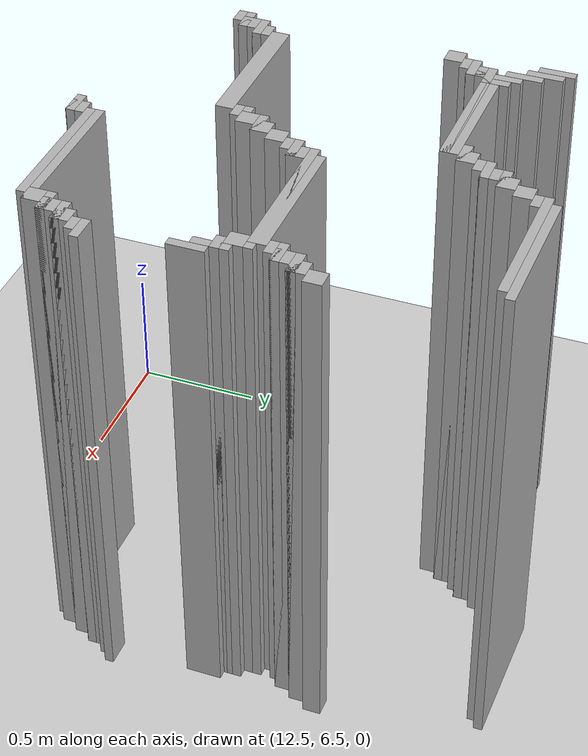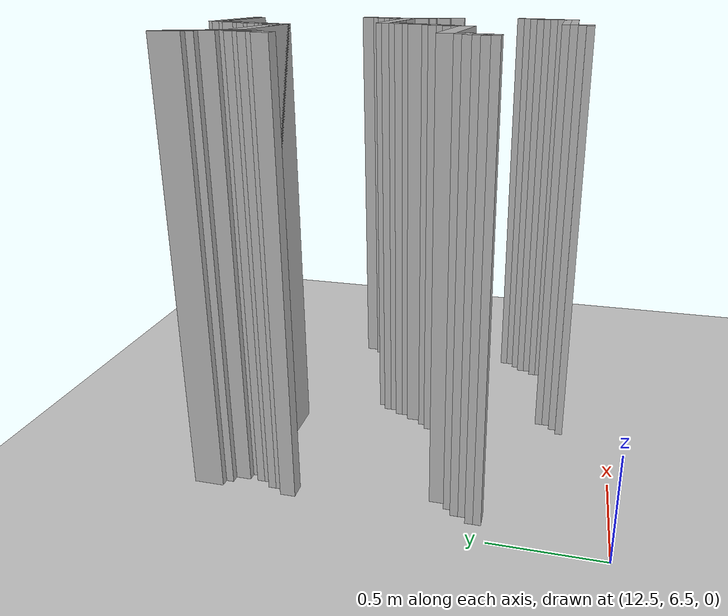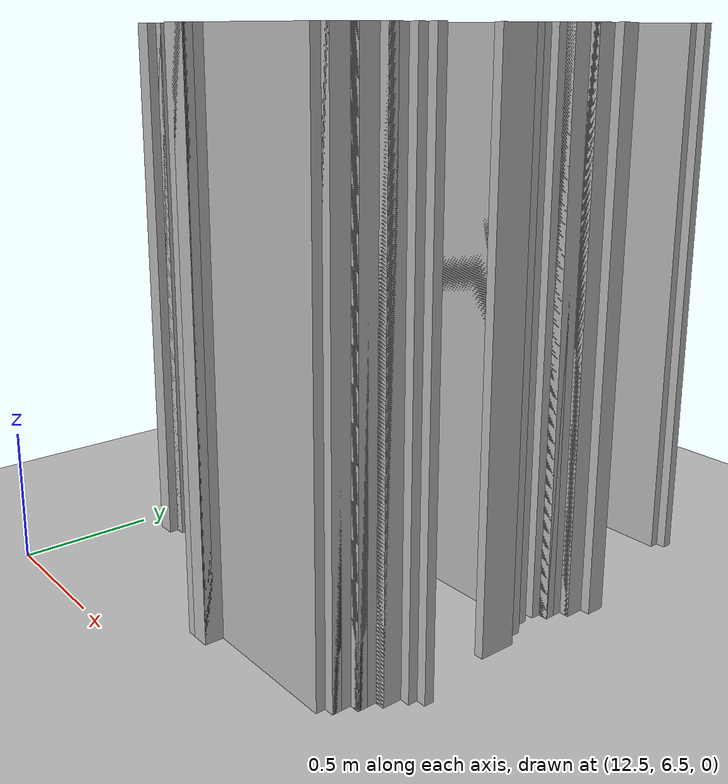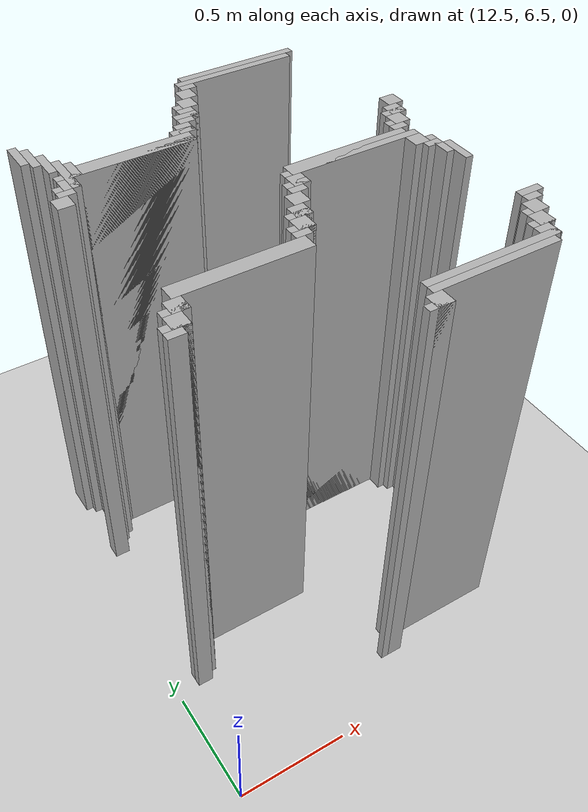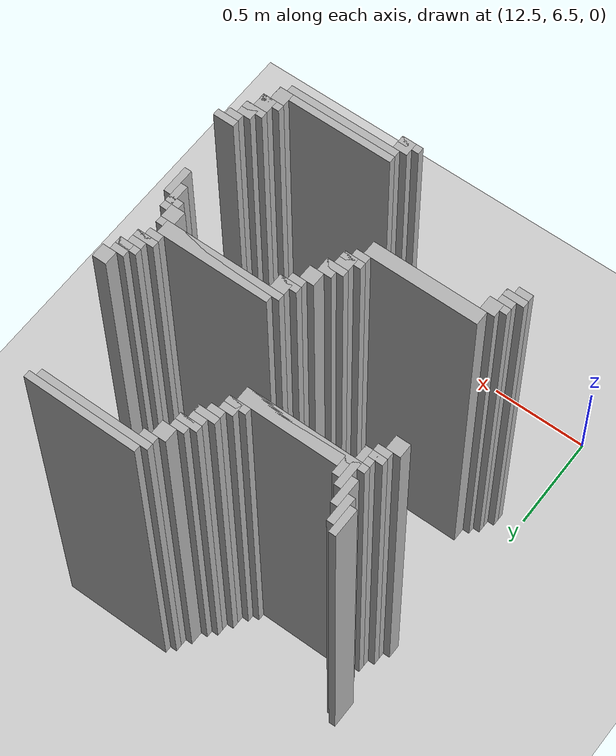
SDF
<sdf version="1.6">
 <world name="slam_world">
  <model name="ground_plane">
   <static>true</static>
   <link name="link">
    <collision name="collision">
     <geometry><plane><normal>0 0 1</normal><size>100 100</size></plane></geometry>
    </collision>
    <visual name="visual">
     <geometry><plane><normal>0 0 1</normal><size>100 100</size></plane></geometry>
     <material>
      <ambient>0.8 0.8 0.8 1</ambient>
      <diffuse>0.8 0.8 0.8 1</diffuse>
      <specular>0.8 0.8 0.8 1</specular>
     </material>
    </visual>
   </link>
  </model>
  <model name="wall_2971">
   <static>true</static>
   <pose>13.7122969837587 8.509280742459396 1.0 0 0 0</pose>
   <link name="link">
    <collision name="collision">
     <geometry><box><size>0.5568445475638051 0.03480278422273782 2.0</size></box></geometry>
    </collision>
    <visual name="visual">
     <geometry><box><size>0.5568445475638051 0.03480278422273782 2.0</size></box></geometry>
     <material><ambient>0.5 0.5 0.5 1</ambient><diffuse>0.7 0.7 0.7 1</diffuse></material>
    </visual>
   </link>
  </model>
  <model name="wall_2984">
   <static>true</static>
   <pose>13.677494199535962 8.474477958236658 1.0 0 0 0</pose>
   <link name="link">
    <collision name="collision">
     <geometry><box><size>0.5568445475638051 0.03480278422273782 2.0</size></box></geometry>
    </collision>
    <visual name="visual">
     <geometry><box><size>0.5568445475638051 0.03480278422273782 2.0</size></box></geometry>
     <material><ambient>0.5 0.5 0.5 1</ambient><diffuse>0.7 0.7 0.7 1</diffuse></material>
    </visual>
   </link>
  </model>
  <model name="wall_2999">
   <static>true</static>
   <pose>13.433874709976797 8.43967517401392 1.0 0 0 0</pose>
   <link name="link">
    <collision name="collision">
     <geometry><box><size>0.06960556844547564 0.03480278422273782 2.0</size></box></geometry>
    </collision>
    <visual name="visual">
     <geometry><box><size>0.06960556844547564 0.03480278422273782 2.0</size></box></geometry>
     <material><ambient>0.5 0.5 0.5 1</ambient><diffuse>0.7 0.7 0.7 1</diffuse></material>
    </visual>
   </link>
  </model>
  <model name="wall_3014">
   <static>true</static>
   <pose>13.39907192575406 8.387470997679815 1.0 0 0 0</pose>
   <link name="link">
    <collision name="collision">
     <geometry><box><size>0.06960556844547564 0.06960556844547564 2.0</size></box></geometry>
    </collision>
    <visual name="visual">
     <geometry><box><size>0.06960556844547564 0.06960556844547564 2.0</size></box></geometry>
     <material><ambient>0.5 0.5 0.5 1</ambient><diffuse>0.7 0.7 0.7 1</diffuse></material>
    </visual>
   </link>
  </model>
  <model name="wall_3028">
   <static>true</static>
   <pose>12.616009280742459 8.2830626450116 1.0 0 0 0</pose>
   <link name="link">
    <collision name="collision">
     <geometry><box><size>0.03480278422273782 0.13921113689095127 2.0</size></box></geometry>
    </collision>
    <visual name="visual">
     <geometry><box><size>0.03480278422273782 0.13921113689095127 2.0</size></box></geometry>
     <material><ambient>0.5 0.5 0.5 1</ambient><diffuse>0.7 0.7 0.7 1</diffuse></material>
    </visual>
   </link>
  </model>
  <model name="wall_3029">
   <static>true</static>
   <pose>13.364269141531322 8.317865429234338 1.0 0 0 0</pose>
   <link name="link">
    <collision name="collision">
     <geometry><box><size>0.06960556844547564 0.06960556844547564 2.0</size></box></geometry>
    </collision>
    <visual name="visual">
     <geometry><box><size>0.06960556844547564 0.06960556844547564 2.0</size></box></geometry>
     <material><ambient>0.5 0.5 0.5 1</ambient><diffuse>0.7 0.7 0.7 1</diffuse></material>
    </visual>
   </link>
  </model>
  <model name="wall_3043">
   <static>true</static>
   <pose>12.650812064965196 8.248259860788863 1.0 0 0 0</pose>
   <link name="link">
    <collision name="collision">
     <geometry><box><size>0.03480278422273782 0.13921113689095127 2.0</size></box></geometry>
    </collision>
    <visual name="visual">
     <geometry><box><size>0.03480278422273782 0.13921113689095127 2.0</size></box></geometry>
     <material><ambient>0.5 0.5 0.5 1</ambient><diffuse>0.7 0.7 0.7 1</diffuse></material>
    </visual>
   </link>
  </model>
  <model name="wall_3044">
   <static>true</static>
   <pose>13.346867749419953 8.30046403712297 1.0 0 0 0</pose>
   <link name="link">
    <collision name="collision">
     <geometry><box><size>0.10440835266821345 0.03480278422273782 2.0</size></box></geometry>
    </collision>
    <visual name="visual">
     <geometry><box><size>0.10440835266821345 0.03480278422273782 2.0</size></box></geometry>
     <material><ambient>0.5 0.5 0.5 1</ambient><diffuse>0.7 0.7 0.7 1</diffuse></material>
    </visual>
   </link>
  </model>
  <model name="wall_3054">
   <static>true</static>
   <pose>13.329466357308585 8.248259860788863 1.0 0 0 0</pose>
   <link name="link">
    <collision name="collision">
     <geometry><box><size>0.06960556844547564 0.06960556844547564 2.0</size></box></geometry>
    </collision>
    <visual name="visual">
     <geometry><box><size>0.06960556844547564 0.06960556844547564 2.0</size></box></geometry>
     <material><ambient>0.5 0.5 0.5 1</ambient><diffuse>0.7 0.7 0.7 1</diffuse></material>
    </visual>
   </link>
  </model>
  <model name="wall_3068">
   <static>true</static>
   <pose>12.685614849187935 8.178654292343387 1.0 0 0 0</pose>
   <link name="link">
    <collision name="collision">
     <geometry><box><size>0.03480278422273782 0.13921113689095127 2.0</size></box></geometry>
    </collision>
    <visual name="visual">
     <geometry><box><size>0.03480278422273782 0.13921113689095127 2.0</size></box></geometry>
     <material><ambient>0.5 0.5 0.5 1</ambient><diffuse>0.7 0.7 0.7 1</diffuse></material>
    </visual>
   </link>
  </model>
  <model name="wall_3069">
   <static>true</static>
   <pose>13.312064965197216 8.230858468677495 1.0 0 0 0</pose>
   <link name="link">
    <collision name="collision">
     <geometry><box><size>0.10440835266821345 0.03480278422273782 2.0</size></box></geometry>
    </collision>
    <visual name="visual">
     <geometry><box><size>0.10440835266821345 0.03480278422273782 2.0</size></box></geometry>
     <material><ambient>0.5 0.5 0.5 1</ambient><diffuse>0.7 0.7 0.7 1</diffuse></material>
    </visual>
   </link>
  </model>
  <model name="wall_3078">
   <static>true</static>
   <pose>13.294663573085847 8.196055684454755 1.0 0 0 0</pose>
   <link name="link">
    <collision name="collision">
     <geometry><box><size>0.06960556844547564 0.03480278422273782 2.0</size></box></geometry>
    </collision>
    <visual name="visual">
     <geometry><box><size>0.06960556844547564 0.03480278422273782 2.0</size></box></geometry>
     <material><ambient>0.5 0.5 0.5 1</ambient><diffuse>0.7 0.7 0.7 1</diffuse></material>
    </visual>
   </link>
  </model>
  <model name="wall_3092">
   <static>true</static>
   <pose>12.720417633410673 8.074245939675174 1.0 0 0 0</pose>
   <link name="link">
    <collision name="collision">
     <geometry><box><size>0.03480278422273782 0.2088167053364269 2.0</size></box></geometry>
    </collision>
    <visual name="visual">
     <geometry><box><size>0.03480278422273782 0.2088167053364269 2.0</size></box></geometry>
     <material><ambient>0.5 0.5 0.5 1</ambient><diffuse>0.7 0.7 0.7 1</diffuse></material>
    </visual>
   </link>
  </model>
  <model name="wall_3093">
   <static>true</static>
   <pose>13.259860788863108 8.14385150812065 1.0 0 0 0</pose>
   <link name="link">
    <collision name="collision">
     <geometry><box><size>0.06960556844547564 0.06960556844547564 2.0</size></box></geometry>
    </collision>
    <visual name="visual">
     <geometry><box><size>0.06960556844547564 0.06960556844547564 2.0</size></box></geometry>
     <material><ambient>0.5 0.5 0.5 1</ambient><diffuse>0.7 0.7 0.7 1</diffuse></material>
    </visual>
   </link>
  </model>
  <model name="wall_3106">
   <static>true</static>
   <pose>12.75522041763341 8.091647331786543 1.0 0 0 0</pose>
   <link name="link">
    <collision name="collision">
     <geometry><box><size>0.03480278422273782 0.10440835266821345 2.0</size></box></geometry>
    </collision>
    <visual name="visual">
     <geometry><box><size>0.03480278422273782 0.10440835266821345 2.0</size></box></geometry>
     <material><ambient>0.5 0.5 0.5 1</ambient><diffuse>0.7 0.7 0.7 1</diffuse></material>
    </visual>
   </link>
  </model>
  <model name="wall_3107">
   <static>true</static>
   <pose>13.24245939675174 8.12645011600928 1.0 0 0 0</pose>
   <link name="link">
    <collision name="collision">
     <geometry><box><size>0.10440835266821345 0.03480278422273782 2.0</size></box></geometry>
    </collision>
    <visual name="visual">
     <geometry><box><size>0.10440835266821345 0.03480278422273782 2.0</size></box></geometry>
     <material><ambient>0.5 0.5 0.5 1</ambient><diffuse>0.7 0.7 0.7 1</diffuse></material>
    </visual>
   </link>
  </model>
  <model name="wall_3118">
   <static>true</static>
   <pose>13.016241299303944 8.074245939675174 1.0 0 0 0</pose>
   <link name="link">
    <collision name="collision">
     <geometry><box><size>0.4872389791183295 0.06960556844547564 2.0</size></box></geometry>
    </collision>
    <visual name="visual">
     <geometry><box><size>0.4872389791183295 0.06960556844547564 2.0</size></box></geometry>
     <material><ambient>0.5 0.5 0.5 1</ambient><diffuse>0.7 0.7 0.7 1</diffuse></material>
    </visual>
   </link>
  </model>
  <model name="wall_3132">
   <static>true</static>
   <pose>12.964037122969836 8.056844547563804 1.0 0 0 0</pose>
   <link name="link">
    <collision name="collision">
     <geometry><box><size>0.5916473317865429 0.03480278422273782 2.0</size></box></geometry>
    </collision>
    <visual name="visual">
     <geometry><box><size>0.5916473317865429 0.03480278422273782 2.0</size></box></geometry>
     <material><ambient>0.5 0.5 0.5 1</ambient><diffuse>0.7 0.7 0.7 1</diffuse></material>
    </visual>
   </link>
  </model>
  <model name="wall_3148">
   <static>true</static>
   <pose>12.703016241299304 8.004640371229698 1.0 0 0 0</pose>
   <link name="link">
    <collision name="collision">
     <geometry><box><size>0.06960556844547564 0.06960556844547564 2.0</size></box></geometry>
    </collision>
    <visual name="visual">
     <geometry><box><size>0.06960556844547564 0.06960556844547564 2.0</size></box></geometry>
     <material><ambient>0.5 0.5 0.5 1</ambient><diffuse>0.7 0.7 0.7 1</diffuse></material>
    </visual>
   </link>
  </model>
  <model name="wall_3164">
   <static>true</static>
   <pose>12.685614849187935 7.987238979118329 1.0 0 0 0</pose>
   <link name="link">
    <collision name="collision">
     <geometry><box><size>0.10440835266821345 0.03480278422273782 2.0</size></box></geometry>
    </collision>
    <visual name="visual">
     <geometry><box><size>0.10440835266821345 0.03480278422273782 2.0</size></box></geometry>
     <material><ambient>0.5 0.5 0.5 1</ambient><diffuse>0.7 0.7 0.7 1</diffuse></material>
    </visual>
   </link>
  </model>
  <model name="wall_3176">
   <static>true</static>
   <pose>12.668213457076565 7.952436194895592 1.0 0 0 0</pose>
   <link name="link">
    <collision name="collision">
     <geometry><box><size>0.06960556844547564 0.03480278422273782 2.0</size></box></geometry>
    </collision>
    <visual name="visual">
     <geometry><box><size>0.06960556844547564 0.03480278422273782 2.0</size></box></geometry>
     <material><ambient>0.5 0.5 0.5 1</ambient><diffuse>0.7 0.7 0.7 1</diffuse></material>
    </visual>
   </link>
  </model>
  <model name="wall_3191">
   <static>true</static>
   <pose>12.633410672853827 7.900232018561485 1.0 0 0 0</pose>
   <link name="link">
    <collision name="collision">
     <geometry><box><size>0.06960556844547564 0.06960556844547564 2.0</size></box></geometry>
    </collision>
    <visual name="visual">
     <geometry><box><size>0.06960556844547564 0.06960556844547564 2.0</size></box></geometry>
     <material><ambient>0.5 0.5 0.5 1</ambient><diffuse>0.7 0.7 0.7 1</diffuse></material>
    </visual>
   </link>
  </model>
  <model name="wall_3192">
   <static>true</static>
   <pose>14.095127610208817 7.900232018561485 1.0 0 0 0</pose>
   <link name="link">
    <collision name="collision">
     <geometry><box><size>0.06960556844547564 0.06960556844547564 2.0</size></box></geometry>
    </collision>
    <visual name="visual">
     <geometry><box><size>0.06960556844547564 0.06960556844547564 2.0</size></box></geometry>
     <material><ambient>0.5 0.5 0.5 1</ambient><diffuse>0.7 0.7 0.7 1</diffuse></material>
    </visual>
   </link>
  </model>
  <model name="wall_3208">
   <static>true</static>
   <pose>14.06032482598608 7.830626450116009 1.0 0 0 0</pose>
   <link name="link">
    <collision name="collision">
     <geometry><box><size>0.06960556844547564 0.06960556844547564 2.0</size></box></geometry>
    </collision>
    <visual name="visual">
     <geometry><box><size>0.06960556844547564 0.06960556844547564 2.0</size></box></geometry>
     <material><ambient>0.5 0.5 0.5 1</ambient><diffuse>0.7 0.7 0.7 1</diffuse></material>
    </visual>
   </link>
  </model>
  <model name="wall_3224">
   <static>true</static>
   <pose>14.042923433874709 7.81322505800464 1.0 0 0 0</pose>
   <link name="link">
    <collision name="collision">
     <geometry><box><size>0.10440835266821345 0.03480278422273782 2.0</size></box></geometry>
    </collision>
    <visual name="visual">
     <geometry><box><size>0.10440835266821345 0.03480278422273782 2.0</size></box></geometry>
     <material><ambient>0.5 0.5 0.5 1</ambient><diffuse>0.7 0.7 0.7 1</diffuse></material>
    </visual>
   </link>
  </model>
  <model name="wall_3234">
   <static>true</static>
   <pose>14.02552204176334 7.761020881670533 1.0 0 0 0</pose>
   <link name="link">
    <collision name="collision">
     <geometry><box><size>0.06960556844547564 0.06960556844547564 2.0</size></box></geometry>
    </collision>
    <visual name="visual">
     <geometry><box><size>0.06960556844547564 0.06960556844547564 2.0</size></box></geometry>
     <material><ambient>0.5 0.5 0.5 1</ambient><diffuse>0.7 0.7 0.7 1</diffuse></material>
    </visual>
   </link>
  </model>
  <model name="wall_3249">
   <static>true</static>
   <pose>14.008120649651971 7.743619489559165 1.0 0 0 0</pose>
   <link name="link">
    <collision name="collision">
     <geometry><box><size>0.10440835266821345 0.03480278422273782 2.0</size></box></geometry>
    </collision>
    <visual name="visual">
     <geometry><box><size>0.10440835266821345 0.03480278422273782 2.0</size></box></geometry>
     <material><ambient>0.5 0.5 0.5 1</ambient><diffuse>0.7 0.7 0.7 1</diffuse></material>
    </visual>
   </link>
  </model>
  <model name="wall_3259">
   <static>true</static>
   <pose>13.990719257540603 7.708816705336426 1.0 0 0 0</pose>
   <link name="link">
    <collision name="collision">
     <geometry><box><size>0.06960556844547564 0.03480278422273782 2.0</size></box></geometry>
    </collision>
    <visual name="visual">
     <geometry><box><size>0.06960556844547564 0.03480278422273782 2.0</size></box></geometry>
     <material><ambient>0.5 0.5 0.5 1</ambient><diffuse>0.7 0.7 0.7 1</diffuse></material>
    </visual>
   </link>
  </model>
  <model name="wall_3274">
   <static>true</static>
   <pose>13.7122969837587 7.65661252900232 1.0 0 0 0</pose>
   <link name="link">
    <collision name="collision">
     <geometry><box><size>0.5568445475638051 0.06960556844547564 2.0</size></box></geometry>
    </collision>
    <visual name="visual">
     <geometry><box><size>0.5568445475638051 0.06960556844547564 2.0</size></box></geometry>
     <material><ambient>0.5 0.5 0.5 1</ambient><diffuse>0.7 0.7 0.7 1</diffuse></material>
    </visual>
   </link>
  </model>
  <model name="wall_3288">
   <static>true</static>
   <pose>13.7122969837587 7.6392111368909505 1.0 0 0 0</pose>
   <link name="link">
    <collision name="collision">
     <geometry><box><size>0.6264501160092807 0.03480278422273782 2.0</size></box></geometry>
    </collision>
    <visual name="visual">
     <geometry><box><size>0.6264501160092807 0.03480278422273782 2.0</size></box></geometry>
     <material><ambient>0.5 0.5 0.5 1</ambient><diffuse>0.7 0.7 0.7 1</diffuse></material>
    </visual>
   </link>
  </model>
  <model name="wall_3303">
   <static>true</static>
   <pose>13.433874709976797 7.587006960556844 1.0 0 0 0</pose>
   <link name="link">
    <collision name="collision">
     <geometry><box><size>0.06960556844547564 0.06960556844547564 2.0</size></box></geometry>
    </collision>
    <visual name="visual">
     <geometry><box><size>0.06960556844547564 0.06960556844547564 2.0</size></box></geometry>
     <material><ambient>0.5 0.5 0.5 1</ambient><diffuse>0.7 0.7 0.7 1</diffuse></material>
    </visual>
   </link>
  </model>
  <model name="wall_3304">
   <static>true</static>
   <pose>13.990719257540603 7.587006960556844 1.0 0 0 0</pose>
   <link name="link">
    <collision name="collision">
     <geometry><box><size>0.06960556844547564 0.06960556844547564 2.0</size></box></geometry>
    </collision>
    <visual name="visual">
     <geometry><box><size>0.06960556844547564 0.06960556844547564 2.0</size></box></geometry>
     <material><ambient>0.5 0.5 0.5 1</ambient><diffuse>0.7 0.7 0.7 1</diffuse></material>
    </visual>
   </link>
  </model>
  <model name="wall_3319">
   <static>true</static>
   <pose>13.416473317865428 7.569605568445476 1.0 0 0 0</pose>
   <link name="link">
    <collision name="collision">
     <geometry><box><size>0.10440835266821345 0.03480278422273782 2.0</size></box></geometry>
    </collision>
    <visual name="visual">
     <geometry><box><size>0.10440835266821345 0.03480278422273782 2.0</size></box></geometry>
     <material><ambient>0.5 0.5 0.5 1</ambient><diffuse>0.7 0.7 0.7 1</diffuse></material>
    </visual>
   </link>
  </model>
  <model name="wall_3320">
   <static>true</static>
   <pose>14.042923433874709 7.517401392111369 1.0 0 0 0</pose>
   <link name="link">
    <collision name="collision">
     <geometry><box><size>0.03480278422273782 0.13921113689095127 2.0</size></box></geometry>
    </collision>
    <visual name="visual">
     <geometry><box><size>0.03480278422273782 0.13921113689095127 2.0</size></box></geometry>
     <material><ambient>0.5 0.5 0.5 1</ambient><diffuse>0.7 0.7 0.7 1</diffuse></material>
    </visual>
   </link>
  </model>
  <model name="wall_3330">
   <static>true</static>
   <pose>13.39907192575406 7.534802784222737 1.0 0 0 0</pose>
   <link name="link">
    <collision name="collision">
     <geometry><box><size>0.06960556844547564 0.03480278422273782 2.0</size></box></geometry>
    </collision>
    <visual name="visual">
     <geometry><box><size>0.06960556844547564 0.03480278422273782 2.0</size></box></geometry>
     <material><ambient>0.5 0.5 0.5 1</ambient><diffuse>0.7 0.7 0.7 1</diffuse></material>
    </visual>
   </link>
  </model>
  <model name="wall_3331">
   <static>true</static>
   <pose>14.02552204176334 7.534802784222737 1.0 0 0 0</pose>
   <link name="link">
    <collision name="collision">
     <geometry><box><size>0.06960556844547564 0.03480278422273782 2.0</size></box></geometry>
    </collision>
    <visual name="visual">
     <geometry><box><size>0.06960556844547564 0.03480278422273782 2.0</size></box></geometry>
     <material><ambient>0.5 0.5 0.5 1</ambient><diffuse>0.7 0.7 0.7 1</diffuse></material>
    </visual>
   </link>
  </model>
  <model name="wall_3346">
   <static>true</static>
   <pose>13.364269141531322 7.48259860788863 1.0 0 0 0</pose>
   <link name="link">
    <collision name="collision">
     <geometry><box><size>0.06960556844547564 0.06960556844547564 2.0</size></box></geometry>
    </collision>
    <visual name="visual">
     <geometry><box><size>0.06960556844547564 0.06960556844547564 2.0</size></box></geometry>
     <material><ambient>0.5 0.5 0.5 1</ambient><diffuse>0.7 0.7 0.7 1</diffuse></material>
    </visual>
   </link>
  </model>
  <model name="wall_3347">
   <static>true</static>
   <pose>14.077726218097448 7.447795823665893 1.0 0 0 0</pose>
   <link name="link">
    <collision name="collision">
     <geometry><box><size>0.03480278422273782 0.13921113689095127 2.0</size></box></geometry>
    </collision>
    <visual name="visual">
     <geometry><box><size>0.03480278422273782 0.13921113689095127 2.0</size></box></geometry>
     <material><ambient>0.5 0.5 0.5 1</ambient><diffuse>0.7 0.7 0.7 1</diffuse></material>
    </visual>
   </link>
  </model>
  <model name="wall_3362">
   <static>true</static>
   <pose>13.329466357308585 7.412993039443156 1.0 0 0 0</pose>
   <link name="link">
    <collision name="collision">
     <geometry><box><size>0.06960556844547564 0.06960556844547564 2.0</size></box></geometry>
    </collision>
    <visual name="visual">
     <geometry><box><size>0.06960556844547564 0.06960556844547564 2.0</size></box></geometry>
     <material><ambient>0.5 0.5 0.5 1</ambient><diffuse>0.7 0.7 0.7 1</diffuse></material>
    </visual>
   </link>
  </model>
  <model name="wall_3378">
   <static>true</static>
   <pose>13.312064965197216 7.395591647331786 1.0 0 0 0</pose>
   <link name="link">
    <collision name="collision">
     <geometry><box><size>0.10440835266821345 0.03480278422273782 2.0</size></box></geometry>
    </collision>
    <visual name="visual">
     <geometry><box><size>0.10440835266821345 0.03480278422273782 2.0</size></box></geometry>
     <material><ambient>0.5 0.5 0.5 1</ambient><diffuse>0.7 0.7 0.7 1</diffuse></material>
    </visual>
   </link>
  </model>
  <model name="wall_3388">
   <static>true</static>
   <pose>13.294663573085847 7.34338747099768 1.0 0 0 0</pose>
   <link name="link">
    <collision name="collision">
     <geometry><box><size>0.06960556844547564 0.06960556844547564 2.0</size></box></geometry>
    </collision>
    <visual name="visual">
     <geometry><box><size>0.06960556844547564 0.06960556844547564 2.0</size></box></geometry>
     <material><ambient>0.5 0.5 0.5 1</ambient><diffuse>0.7 0.7 0.7 1</diffuse></material>
    </visual>
   </link>
  </model>
  <model name="wall_3403">
   <static>true</static>
   <pose>13.277262180974477 7.32598607888631 1.0 0 0 0</pose>
   <link name="link">
    <collision name="collision">
     <geometry><box><size>0.10440835266821345 0.03480278422273782 2.0</size></box></geometry>
    </collision>
    <visual name="visual">
     <geometry><box><size>0.10440835266821345 0.03480278422273782 2.0</size></box></geometry>
     <material><ambient>0.5 0.5 0.5 1</ambient><diffuse>0.7 0.7 0.7 1</diffuse></material>
    </visual>
   </link>
  </model>
  <model name="wall_3413">
   <static>true</static>
   <pose>13.259860788863108 7.291183294663573 1.0 0 0 0</pose>
   <link name="link">
    <collision name="collision">
     <geometry><box><size>0.06960556844547564 0.03480278422273782 2.0</size></box></geometry>
    </collision>
    <visual name="visual">
     <geometry><box><size>0.06960556844547564 0.03480278422273782 2.0</size></box></geometry>
     <material><ambient>0.5 0.5 0.5 1</ambient><diffuse>0.7 0.7 0.7 1</diffuse></material>
    </visual>
   </link>
  </model>
  <model name="wall_3424">
   <static>true</static>
   <pose>12.981438515081207 7.238979118329466 1.0 0 0 0</pose>
   <link name="link">
    <collision name="collision">
     <geometry><box><size>0.5568445475638051 0.06960556844547564 2.0</size></box></geometry>
    </collision>
    <visual name="visual">
     <geometry><box><size>0.5568445475638051 0.06960556844547564 2.0</size></box></geometry>
     <material><ambient>0.5 0.5 0.5 1</ambient><diffuse>0.7 0.7 0.7 1</diffuse></material>
    </visual>
   </link>
  </model>
  <model name="wall_3436">
   <static>true</static>
   <pose>12.703016241299304 7.16937354988399 1.0 0 0 0</pose>
   <link name="link">
    <collision name="collision">
     <geometry><box><size>0.06960556844547564 0.06960556844547564 2.0</size></box></geometry>
    </collision>
    <visual name="visual">
     <geometry><box><size>0.06960556844547564 0.06960556844547564 2.0</size></box></geometry>
     <material><ambient>0.5 0.5 0.5 1</ambient><diffuse>0.7 0.7 0.7 1</diffuse></material>
    </visual>
   </link>
  </model>
  <model name="wall_3448">
   <static>true</static>
   <pose>12.685614849187935 7.151972157772621 1.0 0 0 0</pose>
   <link name="link">
    <collision name="collision">
     <geometry><box><size>0.10440835266821345 0.03480278422273782 2.0</size></box></geometry>
    </collision>
    <visual name="visual">
     <geometry><box><size>0.10440835266821345 0.03480278422273782 2.0</size></box></geometry>
     <material><ambient>0.5 0.5 0.5 1</ambient><diffuse>0.7 0.7 0.7 1</diffuse></material>
    </visual>
   </link>
  </model>
  <model name="wall_3460">
   <static>true</static>
   <pose>12.668213457076565 7.099767981438514 1.0 0 0 0</pose>
   <link name="link">
    <collision name="collision">
     <geometry><box><size>0.06960556844547564 0.06960556844547564 2.0</size></box></geometry>
    </collision>
    <visual name="visual">
     <geometry><box><size>0.06960556844547564 0.06960556844547564 2.0</size></box></geometry>
     <material><ambient>0.5 0.5 0.5 1</ambient><diffuse>0.7 0.7 0.7 1</diffuse></material>
    </visual>
   </link>
  </model>
  <model name="wall_3472">
   <static>true</static>
   <pose>12.650812064965196 7.082366589327146 1.0 0 0 0</pose>
   <link name="link">
    <collision name="collision">
     <geometry><box><size>0.10440835266821345 0.03480278422273782 2.0</size></box></geometry>
    </collision>
    <visual name="visual">
     <geometry><box><size>0.10440835266821345 0.03480278422273782 2.0</size></box></geometry>
     <material><ambient>0.5 0.5 0.5 1</ambient><diffuse>0.7 0.7 0.7 1</diffuse></material>
    </visual>
   </link>
  </model>
  <model name="wall_3473">
   <static>true</static>
   <pose>14.112529002320185 7.082366589327146 1.0 0 0 0</pose>
   <link name="link">
    <collision name="collision">
     <geometry><box><size>0.10440835266821345 0.03480278422273782 2.0</size></box></geometry>
    </collision>
    <visual name="visual">
     <geometry><box><size>0.10440835266821345 0.03480278422273782 2.0</size></box></geometry>
     <material><ambient>0.5 0.5 0.5 1</ambient><diffuse>0.7 0.7 0.7 1</diffuse></material>
    </visual>
   </link>
  </model>
  <model name="wall_3480">
   <static>true</static>
   <pose>12.633410672853827 7.047563805104408 1.0 0 0 0</pose>
   <link name="link">
    <collision name="collision">
     <geometry><box><size>0.06960556844547564 0.03480278422273782 2.0</size></box></geometry>
    </collision>
    <visual name="visual">
     <geometry><box><size>0.06960556844547564 0.03480278422273782 2.0</size></box></geometry>
     <material><ambient>0.5 0.5 0.5 1</ambient><diffuse>0.7 0.7 0.7 1</diffuse></material>
    </visual>
   </link>
  </model>
  <model name="wall_3481">
   <static>true</static>
   <pose>14.095127610208817 7.047563805104408 1.0 0 0 0</pose>
   <link name="link">
    <collision name="collision">
     <geometry><box><size>0.06960556844547564 0.03480278422273782 2.0</size></box></geometry>
    </collision>
    <visual name="visual">
     <geometry><box><size>0.06960556844547564 0.03480278422273782 2.0</size></box></geometry>
     <material><ambient>0.5 0.5 0.5 1</ambient><diffuse>0.7 0.7 0.7 1</diffuse></material>
    </visual>
   </link>
  </model>
  <model name="wall_3492">
   <static>true</static>
   <pose>14.06032482598608 6.995359628770301 1.0 0 0 0</pose>
   <link name="link">
    <collision name="collision">
     <geometry><box><size>0.06960556844547564 0.06960556844547564 2.0</size></box></geometry>
    </collision>
    <visual name="visual">
     <geometry><box><size>0.06960556844547564 0.06960556844547564 2.0</size></box></geometry>
     <material><ambient>0.5 0.5 0.5 1</ambient><diffuse>0.7 0.7 0.7 1</diffuse></material>
    </visual>
   </link>
  </model>
  <model name="wall_3500">
   <static>true</static>
   <pose>14.042923433874709 6.977958236658933 1.0 0 0 0</pose>
   <link name="link">
    <collision name="collision">
     <geometry><box><size>0.10440835266821345 0.03480278422273782 2.0</size></box></geometry>
    </collision>
    <visual name="visual">
     <geometry><box><size>0.10440835266821345 0.03480278422273782 2.0</size></box></geometry>
     <material><ambient>0.5 0.5 0.5 1</ambient><diffuse>0.7 0.7 0.7 1</diffuse></material>
    </visual>
   </link>
  </model>
  <model name="wall_3511">
   <static>true</static>
   <pose>14.02552204176334 6.9257540603248255 1.0 0 0 0</pose>
   <link name="link">
    <collision name="collision">
     <geometry><box><size>0.06960556844547564 0.06960556844547564 2.0</size></box></geometry>
    </collision>
    <visual name="visual">
     <geometry><box><size>0.06960556844547564 0.06960556844547564 2.0</size></box></geometry>
     <material><ambient>0.5 0.5 0.5 1</ambient><diffuse>0.7 0.7 0.7 1</diffuse></material>
    </visual>
   </link>
  </model>
  <model name="wall_3523">
   <static>true</static>
   <pose>14.008120649651971 6.908352668213457 1.0 0 0 0</pose>
   <link name="link">
    <collision name="collision">
     <geometry><box><size>0.10440835266821345 0.03480278422273782 2.0</size></box></geometry>
    </collision>
    <visual name="visual">
     <geometry><box><size>0.10440835266821345 0.03480278422273782 2.0</size></box></geometry>
     <material><ambient>0.5 0.5 0.5 1</ambient><diffuse>0.7 0.7 0.7 1</diffuse></material>
    </visual>
   </link>
  </model>
  <model name="wall_3531">
   <static>true</static>
   <pose>13.990719257540603 6.85614849187935 1.0 0 0 0</pose>
   <link name="link">
    <collision name="collision">
     <geometry><box><size>0.06960556844547564 0.06960556844547564 2.0</size></box></geometry>
    </collision>
    <visual name="visual">
     <geometry><box><size>0.06960556844547564 0.06960556844547564 2.0</size></box></geometry>
     <material><ambient>0.5 0.5 0.5 1</ambient><diffuse>0.7 0.7 0.7 1</diffuse></material>
    </visual>
   </link>
  </model>
  <model name="wall_3544">
   <static>true</static>
   <pose>13.729698375870068 6.838747099767981 1.0 0 0 0</pose>
   <link name="link">
    <collision name="collision">
     <geometry><box><size>0.5916473317865429 0.03480278422273782 2.0</size></box></geometry>
    </collision>
    <visual name="visual">
     <geometry><box><size>0.5916473317865429 0.03480278422273782 2.0</size></box></geometry>
     <material><ambient>0.5 0.5 0.5 1</ambient><diffuse>0.7 0.7 0.7 1</diffuse></material>
    </visual>
   </link>
  </model>
  <model name="wall_3552">
   <static>true</static>
   <pose>13.7122969837587 6.803944315545244 1.0 0 0 0</pose>
   <link name="link">
    <collision name="collision">
     <geometry><box><size>0.5568445475638051 0.03480278422273782 2.0</size></box></geometry>
    </collision>
    <visual name="visual">
     <geometry><box><size>0.5568445475638051 0.03480278422273782 2.0</size></box></geometry>
     <material><ambient>0.5 0.5 0.5 1</ambient><diffuse>0.7 0.7 0.7 1</diffuse></material>
    </visual>
   </link>
  </model>
  <model name="wall_3564">
   <static>true</static>
   <pose>13.433874709976797 6.751740139211137 1.0 0 0 0</pose>
   <link name="link">
    <collision name="collision">
     <geometry><box><size>0.06960556844547564 0.06960556844547564 2.0</size></box></geometry>
    </collision>
    <visual name="visual">
     <geometry><box><size>0.06960556844547564 0.06960556844547564 2.0</size></box></geometry>
     <material><ambient>0.5 0.5 0.5 1</ambient><diffuse>0.7 0.7 0.7 1</diffuse></material>
    </visual>
   </link>
  </model>
  <model name="wall_3577">
   <static>true</static>
   <pose>13.416473317865428 6.734338747099768 1.0 0 0 0</pose>
   <link name="link">
    <collision name="collision">
     <geometry><box><size>0.10440835266821345 0.03480278422273782 2.0</size></box></geometry>
    </collision>
    <visual name="visual">
     <geometry><box><size>0.10440835266821345 0.03480278422273782 2.0</size></box></geometry>
     <material><ambient>0.5 0.5 0.5 1</ambient><diffuse>0.7 0.7 0.7 1</diffuse></material>
    </visual>
   </link>
  </model>
 </world>
</sdf>
